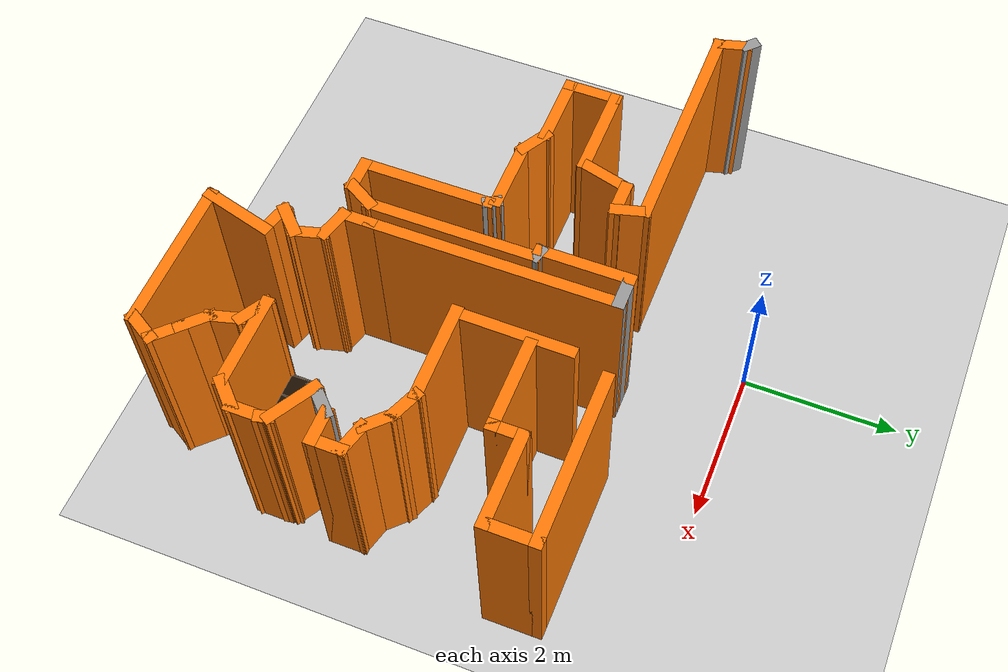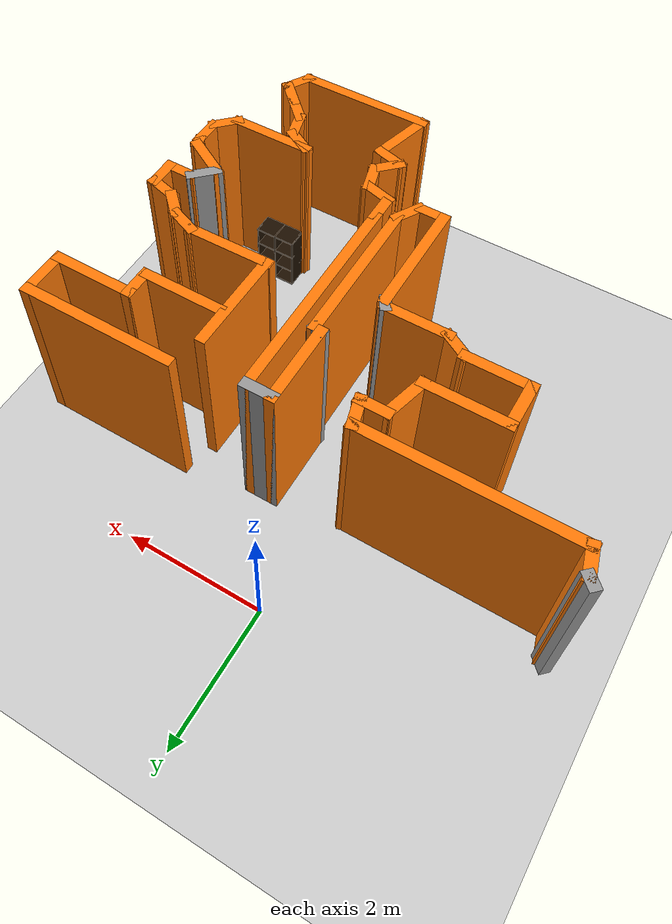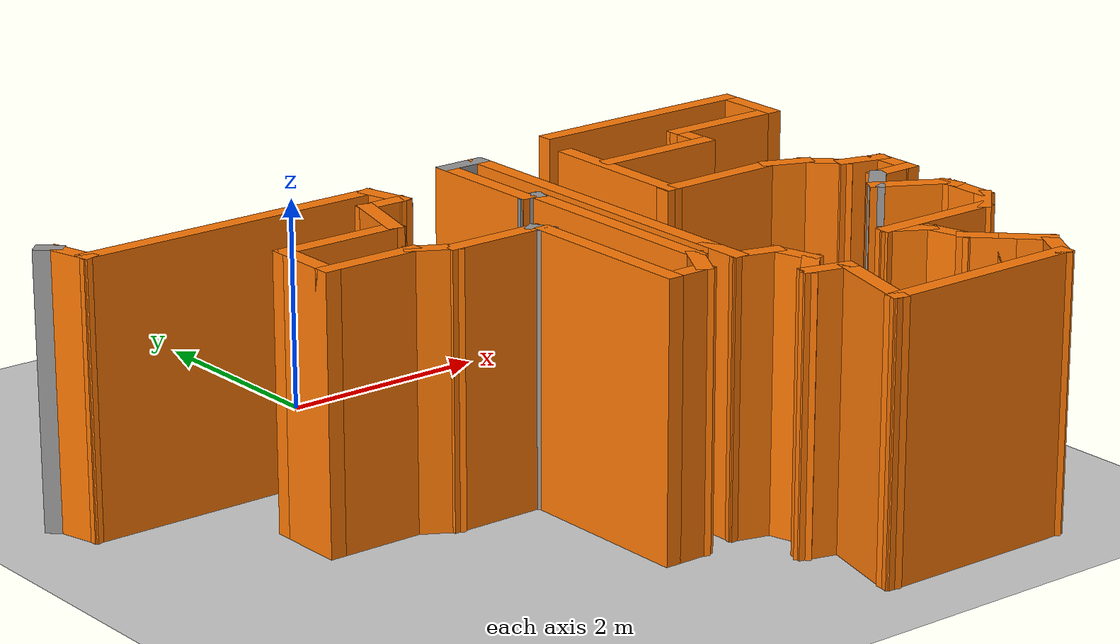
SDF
<sdf version="1.6">
 <world name="default">
  <model name="ground_plane">
   <static>1</static>
   <link name="link">
    <collision name="collision">
     <geometry><plane><normal>0 0 1</normal><size>100 100</size></plane></geometry>
     <surface>
      <contact><collide_bitmask>65535</collide_bitmask></contact>
      <friction><ode><mu>100</mu><mu2>50</mu2></ode></friction>
     </surface>
    </collision>
    <visual name="visual">
     <cast_shadows>0</cast_shadows>
     <geometry><plane><normal>0 0 1</normal><size>100 100</size></plane></geometry>
     <material>
      <script><uri>file://media/materials/scripts/gazebo.material</uri><name>Gazebo/Grey</name></script>
     </material>
    </visual>
   </link>
  </model>
  <model name="map_4">
   <pose>0.04124 -0.27835 0 0 -0 0</pose>
   <link name="Wall_100">
    <collision name="Wall_100_Collision">
     <geometry><box><size>0.5 0.15 2.5</size></box></geometry>
     <pose>0 0 1.25 0 -0 0</pose>
    </collision>
    <visual name="Wall_100_Visual">
     <pose>0 0 1.25 0 -0 0</pose>
     <geometry><box><size>0.5 0.15 2.5</size></box></geometry>
     <material>
      <script><uri>file://media/materials/scripts/gazebo.material</uri><name>Gazebo/Grey</name></script>
      <ambient>0.996078 0.47451 0.0196078 1</ambient>
     </material>
     <meta><layer>0</layer></meta>
    </visual>
    <pose>3.63966 -3.64447 0 0 -0 0</pose>
   </link>
   <link name="Wall_101">
    <collision name="Wall_101_Collision">
     <geometry><box><size>0.5 0.15 2.5</size></box></geometry>
     <pose>0 0 1.25 0 -0 0</pose>
    </collision>
    <visual name="Wall_101_Visual">
     <pose>0 0 1.25 0 -0 0</pose>
     <geometry><box><size>0.5 0.15 2.5</size></box></geometry>
     <material>
      <script><uri>file://media/materials/scripts/gazebo.material</uri><name>Gazebo/Grey</name></script>
      <ambient>0.996078 0.47451 0.0196078 1</ambient>
     </material>
     <meta><layer>0</layer></meta>
    </visual>
    <pose>3.81466 -3.46947 0 0 -0 1.5708</pose>
   </link>
   <link name="Wall_102">
    <collision name="Wall_102_Collision">
     <geometry><box><size>0.5 0.15 2.5</size></box></geometry>
     <pose>0 0 1.25 0 -0 0</pose>
    </collision>
    <visual name="Wall_102_Visual">
     <pose>0 0 1.25 0 -0 0</pose>
     <geometry><box><size>0.5 0.15 2.5</size></box></geometry>
     <material>
      <script><uri>file://media/materials/scripts/gazebo.material</uri><name>Gazebo/Grey</name></script>
      <ambient>0.996078 0.47451 0.0196078 1</ambient>
     </material>
     <meta><layer>0</layer></meta>
    </visual>
    <pose>3.64562 -3.24918 0 0 -0 2.87979</pose>
   </link>
   <link name="Wall_103">
    <collision name="Wall_103_Collision">
     <geometry><box><size>0.5 0.15 2.5</size></box></geometry>
     <pose>0 0 1.25 0 -0 0</pose>
    </collision>
    <visual name="Wall_103_Visual">
     <pose>0 0 1.25 0 -0 0</pose>
     <geometry><box><size>0.5 0.15 2.5</size></box></geometry>
     <material>
      <script><uri>file://media/materials/scripts/gazebo.material</uri><name>Gazebo/Grey</name></script>
      <ambient>0.996078 0.47451 0.0196078 1</ambient>
     </material>
     <meta><layer>0</layer></meta>
    </visual>
    <pose>3.35284 -3.08014 0 0 -0 2.35619</pose>
   </link>
   <link name="Wall_104">
    <collision name="Wall_104_Collision">
     <geometry><box><size>0.493604 0.15 2.5</size></box></geometry>
     <pose>0 0 1.25 0 -0 0</pose>
    </collision>
    <visual name="Wall_104_Visual">
     <pose>0 0 1.25 0 -0 0</pose>
     <geometry><box><size>0.493604 0.15 2.5</size></box></geometry>
     <material>
      <script><uri>file://media/materials/scripts/gazebo.material</uri><name>Gazebo/Grey</name></script>
      <ambient>0.996078 0.47451 0.0196078 1</ambient>
     </material>
     <meta><layer>0</layer></meta>
    </visual>
    <pose>3.06994 -2.89171 0 0 -0 2.75556</pose>
   </link>
   <link name="Wall_105">
    <collision name="Wall_105_Collision">
     <geometry><box><size>1.29573 0.15 2.5</size></box></geometry>
     <pose>0 0 1.25 0 -0 0</pose>
    </collision>
    <visual name="Wall_105_Visual">
     <pose>0 0 1.25 0 -0 0</pose>
     <geometry><box><size>1.29573 0.15 2.5</size></box></geometry>
     <material>
      <script><uri>file://media/materials/scripts/gazebo.material</uri><name>Gazebo/Grey</name></script>
      <ambient>0.996078 0.47451 0.0196078 1</ambient>
     </material>
     <meta><layer>0</layer></meta>
    </visual>
    <pose>2.32276 -2.83463 0 0 -0 -3.12832</pose>
   </link>
   <link name="Wall_106">
    <collision name="Wall_106_Collision">
     <geometry><box><size>1.54571 0.15 2.5</size></box></geometry>
     <pose>0 0 1.25 0 -0 0</pose>
    </collision>
    <visual name="Wall_106_Visual">
     <pose>0 0 1.25 0 -0 0</pose>
     <geometry><box><size>1.54571 0.15 2.5</size></box></geometry>
     <material>
      <script><uri>file://media/materials/scripts/gazebo.material</uri><name>Gazebo/Grey</name></script>
      <ambient>0.996078 0.47451 0.0196078 1</ambient>
     </material>
     <meta><layer>0</layer></meta>
    </visual>
    <pose>1.77276 -2.14442 0 0 -0 1.5599</pose>
   </link>
   <link name="Wall_108">
    <collision name="Wall_108_Collision">
     <geometry><box><size>1.25 0.15 2.5</size></box></geometry>
     <pose>0 0 1.25 0 -0 0</pose>
    </collision>
    <visual name="Wall_108_Visual">
     <pose>0 0 1.25 0 -0 0</pose>
     <geometry><box><size>1.25 0.15 2.5</size></box></geometry>
     <material>
      <script><uri>file://media/materials/scripts/gazebo.material</uri><name>Gazebo/Grey</name></script>
      <ambient>0.996078 0.47451 0.0196078 1</ambient>
     </material>
     <meta><layer>0</layer></meta>
    </visual>
    <pose>2.40475 -1.90642 0 0 -0 0</pose>
   </link>
   <link name="Wall_109">
    <collision name="Wall_109_Collision">
     <geometry><box><size>0.5 0.15 2.5</size></box></geometry>
     <pose>0 0 1.25 0 -0 0</pose>
    </collision>
    <visual name="Wall_109_Visual">
     <pose>0 0 1.25 0 -0 0</pose>
     <geometry><box><size>0.5 0.15 2.5</size></box></geometry>
     <material>
      <script><uri>file://media/materials/scripts/gazebo.material</uri><name>Gazebo/Grey</name></script>
      <ambient>0.996078 0.47451 0.0196078 1</ambient>
     </material>
     <meta><layer>0</layer></meta>
    </visual>
    <pose>2.95475 -1.73142 0 0 -0 1.5708</pose>
   </link>
   <link name="Wall_110">
    <collision name="Wall_110_Collision">
     <geometry><box><size>1.25 0.15 2.5</size></box></geometry>
     <pose>0 0 1.25 0 -0 0</pose>
    </collision>
    <visual name="Wall_110_Visual">
     <pose>0 0 1.25 0 -0 0</pose>
     <geometry><box><size>1.25 0.15 2.5</size></box></geometry>
     <material>
      <script><uri>file://media/materials/scripts/gazebo.material</uri><name>Gazebo/Grey</name></script>
      <ambient>0.996078 0.47451 0.0196078 1</ambient>
     </material>
     <meta><layer>0</layer></meta>
    </visual>
    <pose>3.50475 -1.55642 0 0 -0 0</pose>
   </link>
   <link name="Wall_111">
    <collision name="Wall_111_Collision">
     <geometry><box><size>0.75 0.15 2.5</size></box></geometry>
     <pose>0 0 1.25 0 -0 0</pose>
    </collision>
    <visual name="Wall_111_Visual">
     <pose>0 0 1.25 0 -0 0</pose>
     <geometry><box><size>0.75 0.15 2.5</size></box></geometry>
     <material>
      <script><uri>file://media/materials/scripts/gazebo.material</uri><name>Gazebo/Grey</name></script>
      <ambient>0.996078 0.47451 0.0196078 1</ambient>
     </material>
     <meta><layer>0</layer></meta>
    </visual>
    <pose>4.05475 -1.25642 0 0 -0 1.5708</pose>
   </link>
   <link name="Wall_112">
    <collision name="Wall_112_Collision">
     <geometry><box><size>2.25 0.15 2.5</size></box></geometry>
     <pose>0 0 1.25 0 -0 0</pose>
    </collision>
    <visual name="Wall_112_Visual">
     <pose>0 0 1.25 0 -0 0</pose>
     <geometry><box><size>2.25 0.15 2.5</size></box></geometry>
     <material>
      <script><uri>file://media/materials/scripts/gazebo.material</uri><name>Gazebo/Grey</name></script>
      <ambient>0.996078 0.47451 0.0196078 1</ambient>
     </material>
     <meta><layer>0</layer></meta>
    </visual>
    <pose>3.00475 -0.956422 0 0 -0 3.14159</pose>
   </link>
   <link name="Wall_49">
    <collision name="Wall_49_Collision">
     <geometry><box><size>0.25 0.15 2.5</size></box></geometry>
     <pose>0 0 1.25 0 -0 0</pose>
    </collision>
    <visual name="Wall_49_Visual">
     <pose>0 0 1.25 0 -0 0</pose>
     <geometry><box><size>0.25 0.15 2.5</size></box></geometry>
     <material>
      <script><uri>file://media/materials/scripts/gazebo.material</uri><name>Gazebo/Grey</name></script>
      <ambient>1 1 1 1</ambient>
     </material>
     <meta><layer>0</layer></meta>
    </visual>
    <pose>-3.31315 -0.935756 0 0 -0 -0.785398</pose>
   </link>
   <link name="Wall_50">
    <collision name="Wall_50_Collision">
     <geometry><box><size>0.5 0.15 2.5</size></box></geometry>
     <pose>0 0 1.25 0 -0 0</pose>
    </collision>
    <visual name="Wall_50_Visual">
     <pose>0 0 1.25 0 -0 0</pose>
     <geometry><box><size>0.5 0.15 2.5</size></box></geometry>
     <material>
      <script><uri>file://media/materials/scripts/gazebo.material</uri><name>Gazebo/Grey</name></script>
      <ambient>0.996078 0.47451 0.0196078 1</ambient>
     </material>
     <meta><layer>0</layer></meta>
    </visual>
    <pose>-3.2325 -1.14015 0 0 -0 -1.309</pose>
   </link>
   <link name="Wall_51">
    <collision name="Wall_51_Collision">
     <geometry><box><size>3 0.15 2.5</size></box></geometry>
     <pose>0 0 1.25 0 -0 0</pose>
    </collision>
    <visual name="Wall_51_Visual">
     <pose>0 0 1.25 0 -0 0</pose>
     <geometry><box><size>3 0.15 2.5</size></box></geometry>
     <material>
      <script><uri>file://media/materials/scripts/gazebo.material</uri><name>Gazebo/Grey</name></script>
      <ambient>0.996078 0.47451 0.0196078 1</ambient>
     </material>
     <meta><layer>0</layer></meta>
    </visual>
    <pose>-1.76221 -1.30919 0 0 -0 0</pose>
   </link>
   <link name="Wall_52">
    <collision name="Wall_52_Collision">
     <geometry><box><size>0.5 0.15 2.5</size></box></geometry>
     <pose>0 0 1.25 0 -0 0</pose>
    </collision>
    <visual name="Wall_52_Visual">
     <pose>0 0 1.25 0 -0 0</pose>
     <geometry><box><size>0.5 0.15 2.5</size></box></geometry>
     <material>
      <script><uri>file://media/materials/scripts/gazebo.material</uri><name>Gazebo/Grey</name></script>
      <ambient>0.996078 0.47451 0.0196078 1</ambient>
     </material>
     <meta><layer>0</layer></meta>
    </visual>
    <pose>-0.291915 -1.47822 0 0 -0 -1.309</pose>
   </link>
   <link name="Wall_53">
    <collision name="Wall_53_Collision">
     <geometry><box><size>0.5 0.15 2.5</size></box></geometry>
     <pose>0 0 1.25 0 -0 0</pose>
    </collision>
    <visual name="Wall_53_Visual">
     <pose>0 0 1.25 0 -0 0</pose>
     <geometry><box><size>0.5 0.15 2.5</size></box></geometry>
     <material>
      <script><uri>file://media/materials/scripts/gazebo.material</uri><name>Gazebo/Grey</name></script>
      <ambient>0.996078 0.47451 0.0196078 1</ambient>
     </material>
     <meta><layer>0</layer></meta>
    </visual>
    <pose>-0.421622 -1.64726 0 0 -0 3.14159</pose>
   </link>
   <link name="Wall_54">
    <collision name="Wall_54_Collision">
     <geometry><box><size>0.75 0.15 2.5</size></box></geometry>
     <pose>0 0 1.25 0 -0 0</pose>
    </collision>
    <visual name="Wall_54_Visual">
     <pose>0 0 1.25 0 -0 0</pose>
     <geometry><box><size>0.75 0.15 2.5</size></box></geometry>
     <material>
      <script><uri>file://media/materials/scripts/gazebo.material</uri><name>Gazebo/Grey</name></script>
      <ambient>0.996078 0.47451 0.0196078 1</ambient>
     </material>
     <meta><layer>0</layer></meta>
    </visual>
    <pose>-0.674268 -1.93704 0 0 -0 -1.8326</pose>
   </link>
   <link name="Wall_55">
    <collision name="Wall_55_Collision">
     <geometry><box><size>1.25 0.15 2.5</size></box></geometry>
     <pose>0 0 1.25 0 -0 0</pose>
    </collision>
    <visual name="Wall_55_Visual">
     <pose>0 0 1.25 0 -0 0</pose>
     <geometry><box><size>1.25 0.15 2.5</size></box></geometry>
     <material>
      <script><uri>file://media/materials/scripts/gazebo.material</uri><name>Gazebo/Grey</name></script>
      <ambient>0.996078 0.47451 0.0196078 1</ambient>
     </material>
     <meta><layer>0</layer></meta>
    </visual>
    <pose>-1.30191 -2.22681 0 0 -0 3.14159</pose>
   </link>
   <link name="Wall_60">
    <collision name="Wall_60_Collision">
     <geometry><box><size>0.75 0.15 2.5</size></box></geometry>
     <pose>0 0 1.25 0 -0 0</pose>
    </collision>
    <visual name="Wall_60_Visual">
     <pose>0 0 1.25 0 -0 0</pose>
     <geometry><box><size>0.75 0.15 2.5</size></box></geometry>
     <material>
      <script><uri>file://media/materials/scripts/gazebo.material</uri><name>Gazebo/Grey</name></script>
      <ambient>0.996078 0.47451 0.0196078 1</ambient>
     </material>
     <meta><layer>0</layer></meta>
    </visual>
    <pose>-1.85191 -2.52682 0 0 -0 -1.5708</pose>
   </link>
   <link name="Wall_61">
    <collision name="Wall_61_Collision">
     <geometry><box><size>1 0.15 2.5</size></box></geometry>
     <pose>0 0 1.25 0 -0 0</pose>
    </collision>
    <visual name="Wall_61_Visual">
     <pose>0 0 1.25 0 -0 0</pose>
     <geometry><box><size>1 0.15 2.5</size></box></geometry>
     <material>
      <script><uri>file://media/materials/scripts/gazebo.material</uri><name>Gazebo/Grey</name></script>
      <ambient>0.996078 0.47451 0.0196078 1</ambient>
     </material>
     <meta><layer>0</layer></meta>
    </visual>
    <pose>-1.42691 -2.82681 0 0 -0 0</pose>
   </link>
   <link name="Wall_62">
    <collision name="Wall_62_Collision">
     <geometry><box><size>0.5 0.15 2.5</size></box></geometry>
     <pose>0 0 1.25 0 -0 0</pose>
    </collision>
    <visual name="Wall_62_Visual">
     <pose>0 0 1.25 0 -0 0</pose>
     <geometry><box><size>0.5 0.15 2.5</size></box></geometry>
     <material>
      <script><uri>file://media/materials/scripts/gazebo.material</uri><name>Gazebo/Grey</name></script>
      <ambient>0.996078 0.47451 0.0196078 1</ambient>
     </material>
     <meta><layer>0</layer></meta>
    </visual>
    <pose>-0.850359 -2.91431 0 0 -0 -0.523599</pose>
   </link>
   <link name="Wall_68">
    <collision name="Wall_68_Collision">
     <geometry><box><size>1 0.15 2.5</size></box></geometry>
     <pose>0 0 1.25 0 -0 0</pose>
    </collision>
    <visual name="Wall_68_Visual">
     <pose>0 0 1.25 0 -0 0</pose>
     <geometry><box><size>1 0.15 2.5</size></box></geometry>
     <material>
      <script><uri>file://media/materials/scripts/gazebo.material</uri><name>Gazebo/Grey</name></script>
      <ambient>0.996078 0.47451 0.0196078 1</ambient>
     </material>
     <meta><layer>0</layer></meta>
    </visual>
    <pose>-0.273804 -3.00182 0 0 -0 0</pose>
   </link>
   <link name="Wall_69">
    <collision name="Wall_69_Collision">
     <geometry><box><size>0.25 0.15 2.5</size></box></geometry>
     <pose>0 0 1.25 0 -0 0</pose>
    </collision>
    <visual name="Wall_69_Visual">
     <pose>0 0 1.25 0 -0 0</pose>
     <geometry><box><size>0.25 0.15 2.5</size></box></geometry>
     <material>
      <script><uri>file://media/materials/scripts/gazebo.material</uri><name>Gazebo/Grey</name></script>
      <ambient>1 1 1 1</ambient>
     </material>
     <meta><layer>0</layer></meta>
    </visual>
    <pose>0.176196 -3.04512 0 0 -0 -1.0472</pose>
   </link>
   <link name="Wall_70">
    <collision name="Wall_70_Collision">
     <geometry><box><size>1.75 0.15 2.5</size></box></geometry>
     <pose>0 0 1.25 0 -0 0</pose>
    </collision>
    <visual name="Wall_70_Visual">
     <pose>0 0 1.25 0 -0 0</pose>
     <geometry><box><size>1.75 0.15 2.5</size></box></geometry>
     <material>
      <script><uri>file://media/materials/scripts/gazebo.material</uri><name>Gazebo/Grey</name></script>
      <ambient>0.996078 0.47451 0.0196078 1</ambient>
     </material>
     <meta><layer>0</layer></meta>
    </visual>
    <pose>0.201195 -3.88842 0 0 -0 -1.5708</pose>
   </link>
   <link name="Wall_73">
    <collision name="Wall_73_Collision">
     <geometry><box><size>0.5 0.15 2.5</size></box></geometry>
     <pose>0 0 1.25 0 -0 0</pose>
    </collision>
    <visual name="Wall_73_Visual">
     <pose>0 0 1.25 0 -0 0</pose>
     <geometry><box><size>0.5 0.15 2.5</size></box></geometry>
     <material>
      <script><uri>file://media/materials/scripts/gazebo.material</uri><name>Gazebo/Grey</name></script>
      <ambient>0.996078 0.47451 0.0196078 1</ambient>
     </material>
     <meta><layer>0</layer></meta>
    </visual>
    <pose>0.376195 -4.68842 0 0 -0 0</pose>
   </link>
   <link name="Wall_74">
    <collision name="Wall_74_Collision">
     <geometry><box><size>0.5 0.15 2.5</size></box></geometry>
     <pose>0 0 1.25 0 -0 0</pose>
    </collision>
    <visual name="Wall_74_Visual">
     <pose>0 0 1.25 0 -0 0</pose>
     <geometry><box><size>0.5 0.15 2.5</size></box></geometry>
     <material>
      <script><uri>file://media/materials/scripts/gazebo.material</uri><name>Gazebo/Grey</name></script>
      <ambient>0.996078 0.47451 0.0196078 1</ambient>
     </material>
     <meta><layer>0</layer></meta>
    </visual>
    <pose>0.638695 -4.53686 0 0 -0 1.0472</pose>
   </link>
   <link name="Wall_75">
    <collision name="Wall_75_Collision">
     <geometry><box><size>2.25 0.15 2.5</size></box></geometry>
     <pose>0 0 1.25 0 -0 0</pose>
    </collision>
    <visual name="Wall_75_Visual">
     <pose>0 0 1.25 0 -0 0</pose>
     <geometry><box><size>2.25 0.15 2.5</size></box></geometry>
     <material>
      <script><uri>file://media/materials/scripts/gazebo.material</uri><name>Gazebo/Grey</name></script>
      <ambient>0.996078 0.47451 0.0196078 1</ambient>
     </material>
     <meta><layer>0</layer></meta>
    </visual>
    <pose>0.726195 -3.33531 0 0 -0 1.5708</pose>
   </link>
   <link name="Wall_76">
    <collision name="Wall_76_Collision">
     <geometry><box><size>0.25 0.15 2.5</size></box></geometry>
     <pose>0 0 1.25 0 -0 0</pose>
    </collision>
    <visual name="Wall_76_Visual">
     <pose>0 0 1.25 0 -0 0</pose>
     <geometry><box><size>0.25 0.15 2.5</size></box></geometry>
     <material>
      <script><uri>file://media/materials/scripts/gazebo.material</uri><name>Gazebo/Grey</name></script>
      <ambient>1 1 1 1</ambient>
     </material>
     <meta><layer>0</layer></meta>
    </visual>
    <pose>0.677899 -2.27237 0 0 -0 2.87979</pose>
   </link>
   <link name="Wall_77">
    <collision name="Wall_77_Collision">
     <geometry><box><size>1.25 0.15 2.5</size></box></geometry>
     <pose>0 0 1.25 0 -0 0</pose>
    </collision>
    <visual name="Wall_77_Visual">
     <pose>0 0 1.25 0 -0 0</pose>
     <geometry><box><size>1.25 0.15 2.5</size></box></geometry>
     <material>
      <script><uri>file://media/materials/scripts/gazebo.material</uri><name>Gazebo/Grey</name></script>
      <ambient>0.996078 0.47451 0.0196078 1</ambient>
     </material>
     <meta><layer>0</layer></meta>
    </visual>
    <pose>0.629603 -1.70943 0 0 -0 1.5708</pose>
   </link>
   <link name="Wall_78">
    <collision name="Wall_78_Collision">
     <geometry><box><size>0.5 0.15 2.5</size></box></geometry>
     <pose>0 0 1.25 0 -0 0</pose>
    </collision>
    <visual name="Wall_78_Visual">
     <pose>0 0 1.25 0 -0 0</pose>
     <geometry><box><size>0.5 0.15 2.5</size></box></geometry>
     <material>
      <script><uri>file://media/materials/scripts/gazebo.material</uri><name>Gazebo/Grey</name></script>
      <ambient>1 1 1 1</ambient>
     </material>
     <meta><layer>0</layer></meta>
    </visual>
    <pose>0.804603 -1.15943 0 0 -0 0</pose>
   </link>
   <link name="Wall_79">
    <collision name="Wall_79_Collision">
     <geometry><box><size>3.25 0.15 2.5</size></box></geometry>
     <pose>0 0 1.25 0 -0 0</pose>
    </collision>
    <visual name="Wall_79_Visual">
     <pose>0 0 1.25 0 -0 0</pose>
     <geometry><box><size>3.25 0.15 2.5</size></box></geometry>
     <material>
      <script><uri>file://media/materials/scripts/gazebo.material</uri><name>Gazebo/Grey</name></script>
      <ambient>0.996078 0.47451 0.0196078 1</ambient>
     </material>
     <meta><layer>0</layer></meta>
    </visual>
    <pose>0.979603 -2.70943 0 0 -0 -1.5708</pose>
   </link>
   <link name="Wall_80">
    <collision name="Wall_80_Collision">
     <geometry><box><size>0.5 0.15 2.5</size></box></geometry>
     <pose>0 0 1.25 0 -0 0</pose>
    </collision>
    <visual name="Wall_80_Visual">
     <pose>0 0 1.25 0 -0 0</pose>
     <geometry><box><size>0.5 0.15 2.5</size></box></geometry>
     <material>
      <script><uri>file://media/materials/scripts/gazebo.material</uri><name>Gazebo/Grey</name></script>
      <ambient>0.996078 0.47451 0.0196078 1</ambient>
     </material>
     <meta><layer>0</layer></meta>
    </visual>
    <pose>0.979603 -4.43443 0 0 -0 -1.5708</pose>
   </link>
   <link name="Wall_81">
    <collision name="Wall_81_Collision">
     <geometry><box><size>0.5 0.15 2.5</size></box></geometry>
     <pose>0 0 1.25 0 -0 0</pose>
    </collision>
    <visual name="Wall_81_Visual">
     <pose>0 0 1.25 0 -0 0</pose>
     <geometry><box><size>0.5 0.15 2.5</size></box></geometry>
     <material>
      <script><uri>file://media/materials/scripts/gazebo.material</uri><name>Gazebo/Grey</name></script>
      <ambient>0.996078 0.47451 0.0196078 1</ambient>
     </material>
     <meta><layer>0</layer></meta>
    </visual>
    <pose>1.14864 -4.65472 0 0 -0 -0.261799</pose>
   </link>
   <link name="Wall_82">
    <collision name="Wall_82_Collision">
     <geometry><box><size>0.5 0.15 2.5</size></box></geometry>
     <pose>0 0 1.25 0 -0 0</pose>
    </collision>
    <visual name="Wall_82_Visual">
     <pose>0 0 1.25 0 -0 0</pose>
     <geometry><box><size>0.5 0.15 2.5</size></box></geometry>
     <material>
      <script><uri>file://media/materials/scripts/gazebo.material</uri><name>Gazebo/Grey</name></script>
      <ambient>0.996078 0.47451 0.0196078 1</ambient>
     </material>
     <meta><layer>0</layer></meta>
    </visual>
    <pose>1.36297 -4.86905 0 0 -0 -1.309</pose>
   </link>
   <link name="Wall_83">
    <collision name="Wall_83_Collision">
     <geometry><box><size>0.5 0.15 2.5</size></box></geometry>
     <pose>0 0 1.25 0 -0 0</pose>
    </collision>
    <visual name="Wall_83_Visual">
     <pose>0 0 1.25 0 -0 0</pose>
     <geometry><box><size>0.5 0.15 2.5</size></box></geometry>
     <material>
      <script><uri>file://media/materials/scripts/gazebo.material</uri><name>Gazebo/Grey</name></script>
      <ambient>0.996078 0.47451 0.0196078 1</ambient>
     </material>
     <meta><layer>0</layer></meta>
    </visual>
    <pose>1.28452 -5.16183 0 0 -0 -2.35619</pose>
   </link>
   <link name="Wall_84">
    <collision name="Wall_84_Collision">
     <geometry><box><size>0.5 0.15 2.5</size></box></geometry>
     <pose>0 0 1.25 0 -0 0</pose>
    </collision>
    <visual name="Wall_84_Visual">
     <pose>0 0 1.25 0 -0 0</pose>
     <geometry><box><size>0.5 0.15 2.5</size></box></geometry>
     <material>
      <script><uri>file://media/materials/scripts/gazebo.material</uri><name>Gazebo/Grey</name></script>
      <ambient>0.996078 0.47451 0.0196078 1</ambient>
     </material>
     <meta><layer>0</layer></meta>
    </visual>
    <pose>1.32981 -5.33087 0 0 -0 -0.261799</pose>
   </link>
   <link name="Wall_85">
    <collision name="Wall_85_Collision">
     <geometry><box><size>1 0.15 2.5</size></box></geometry>
     <pose>0 0 1.25 0 -0 0</pose>
    </collision>
    <visual name="Wall_85_Visual">
     <pose>0 0 1.25 0 -0 0</pose>
     <geometry><box><size>1 0.15 2.5</size></box></geometry>
     <material>
      <script><uri>file://media/materials/scripts/gazebo.material</uri><name>Gazebo/Grey</name></script>
      <ambient>0.996078 0.47451 0.0196078 1</ambient>
     </material>
     <meta><layer>0</layer></meta>
    </visual>
    <pose>1.38885 -5.78668 0 0 -0 -1.8326</pose>
   </link>
   <link name="Wall_86">
    <collision name="Wall_86_Collision">
     <geometry><box><size>2 0.15 2.5</size></box></geometry>
     <pose>0 0 1.25 0 -0 0</pose>
    </collision>
    <visual name="Wall_86_Visual">
     <pose>0 0 1.25 0 -0 0</pose>
     <geometry><box><size>2 0.15 2.5</size></box></geometry>
     <material>
      <script><uri>file://media/materials/scripts/gazebo.material</uri><name>Gazebo/Grey</name></script>
      <ambient>0.996078 0.47451 0.0196078 1</ambient>
     </material>
     <meta><layer>0</layer></meta>
    </visual>
    <pose>2.20385 -6.1972 0 0 -0 0</pose>
   </link>
   <link name="Wall_87">
    <collision name="Wall_87_Collision">
     <geometry><box><size>0.5 0.15 2.5</size></box></geometry>
     <pose>0 0 1.25 0 -0 0</pose>
    </collision>
    <visual name="Wall_87_Visual">
     <pose>0 0 1.25 0 -0 0</pose>
     <geometry><box><size>0.5 0.15 2.5</size></box></geometry>
     <material>
      <script><uri>file://media/materials/scripts/gazebo.material</uri><name>Gazebo/Grey</name></script>
      <ambient>0.996078 0.47451 0.0196078 1</ambient>
     </material>
     <meta><layer>0</layer></meta>
    </visual>
    <pose>3.21635 -6.04564 0 0 -0 1.0472</pose>
   </link>
   <link name="Wall_88">
    <collision name="Wall_88_Collision">
     <geometry><box><size>0.5 0.15 2.5</size></box></geometry>
     <pose>0 0 1.25 0 -0 0</pose>
    </collision>
    <visual name="Wall_88_Visual">
     <pose>0 0 1.25 0 -0 0</pose>
     <geometry><box><size>0.5 0.15 2.5</size></box></geometry>
     <material>
      <script><uri>file://media/materials/scripts/gazebo.material</uri><name>Gazebo/Grey</name></script>
      <ambient>0.996078 0.47451 0.0196078 1</ambient>
     </material>
     <meta><layer>0</layer></meta>
    </visual>
    <pose>3.18011 -5.77035 0 0 -0 2.35619</pose>
   </link>
   <link name="Wall_89">
    <collision name="Wall_89_Collision">
     <geometry><box><size>0.5 0.15 2.5</size></box></geometry>
     <pose>0 0 1.25 0 -0 0</pose>
    </collision>
    <visual name="Wall_89_Visual">
     <pose>0 0 1.25 0 -0 0</pose>
     <geometry><box><size>0.5 0.15 2.5</size></box></geometry>
     <material>
      <script><uri>file://media/materials/scripts/gazebo.material</uri><name>Gazebo/Grey</name></script>
      <ambient>0.996078 0.47451 0.0196078 1</ambient>
     </material>
     <meta><layer>0</layer></meta>
    </visual>
    <pose>2.93262 -5.52286 0 0 -0 2.35619</pose>
   </link>
   <link name="Wall_92">
    <collision name="Wall_92_Collision">
     <geometry><box><size>0.5 0.15 2.5</size></box></geometry>
     <pose>0 0 1.25 0 -0 0</pose>
    </collision>
    <visual name="Wall_92_Visual">
     <pose>0 0 1.25 0 -0 0</pose>
     <geometry><box><size>0.5 0.15 2.5</size></box></geometry>
     <material>
      <script><uri>file://media/materials/scripts/gazebo.material</uri><name>Gazebo/Grey</name></script>
      <ambient>0.996078 0.47451 0.0196078 1</ambient>
     </material>
     <meta><layer>0</layer></meta>
    </visual>
    <pose>2.76359 -5.23008 0 0 -0 1.8326</pose>
   </link>
   <link name="Wall_93">
    <collision name="Wall_93_Collision">
     <geometry><box><size>0.5 0.15 2.5</size></box></geometry>
     <pose>0 0 1.25 0 -0 0</pose>
    </collision>
    <visual name="Wall_93_Visual">
     <pose>0 0 1.25 0 -0 0</pose>
     <geometry><box><size>0.5 0.15 2.5</size></box></geometry>
     <material>
      <script><uri>file://media/materials/scripts/gazebo.material</uri><name>Gazebo/Grey</name></script>
      <ambient>0.996078 0.47451 0.0196078 1</ambient>
     </material>
     <meta><layer>0</layer></meta>
    </visual>
    <pose>2.56674 -4.97354 0 0 -0 2.61799</pose>
   </link>
   <link name="Wall_94">
    <collision name="Wall_94_Collision">
     <geometry><box><size>1.25 0.15 2.5</size></box></geometry>
     <pose>0 0 1.25 0 -0 0</pose>
    </collision>
    <visual name="Wall_94_Visual">
     <pose>0 0 1.25 0 -0 0</pose>
     <geometry><box><size>1.25 0.15 2.5</size></box></geometry>
     <material>
      <script><uri>file://media/materials/scripts/gazebo.material</uri><name>Gazebo/Grey</name></script>
      <ambient>0.996078 0.47451 0.0196078 1</ambient>
     </material>
     <meta><layer>0</layer></meta>
    </visual>
    <pose>2.96518 -4.88604 0 0 -0 0</pose>
   </link>
   <link name="Wall_95">
    <collision name="Wall_95_Collision">
     <geometry><box><size>0.5 0.15 2.5</size></box></geometry>
     <pose>0 0 1.25 0 -0 0</pose>
    </collision>
    <visual name="Wall_95_Visual">
     <pose>0 0 1.25 0 -0 0</pose>
     <geometry><box><size>0.5 0.15 2.5</size></box></geometry>
     <material>
      <script><uri>file://media/materials/scripts/gazebo.material</uri><name>Gazebo/Grey</name></script>
      <ambient>0.996078 0.47451 0.0196078 1</ambient>
     </material>
     <meta><layer>0</layer></meta>
    </visual>
    <pose>3.63893 -4.7623 0 0 -0 0.785398</pose>
   </link>
   <link name="Wall_96">
    <collision name="Wall_96_Collision">
     <geometry><box><size>0.5 0.15 2.5</size></box></geometry>
     <pose>0 0 1.25 0 -0 0</pose>
    </collision>
    <visual name="Wall_96_Visual">
     <pose>0 0 1.25 0 -0 0</pose>
     <geometry><box><size>0.5 0.15 2.5</size></box></geometry>
     <material>
      <script><uri>file://media/materials/scripts/gazebo.material</uri><name>Gazebo/Grey</name></script>
      <ambient>0.996078 0.47451 0.0196078 1</ambient>
     </material>
     <meta><layer>0</layer></meta>
    </visual>
    <pose>3.76267 -4.46355 0 0 -0 1.5708</pose>
   </link>
   <link name="Wall_97">
    <collision name="Wall_97_Collision">
     <geometry><box><size>0.25 0.15 2.5</size></box></geometry>
     <pose>0 0 1.25 0 -0 0</pose>
    </collision>
    <visual name="Wall_97_Visual">
     <pose>0 0 1.25 0 -0 0</pose>
     <geometry><box><size>0.25 0.15 2.5</size></box></geometry>
     <material>
      <script><uri>file://media/materials/scripts/gazebo.material</uri><name>Gazebo/Grey</name></script>
      <ambient>0.996078 0.47451 0.0196078 1</ambient>
     </material>
     <meta><layer>0</layer></meta>
    </visual>
    <pose>3.74973 -4.24026 0 0 -0 1.8326</pose>
   </link>
   <link name="Wall_98">
    <collision name="Wall_98_Collision">
     <geometry><box><size>0.75 0.15 2.5</size></box></geometry>
     <pose>0 0 1.25 0 -0 0</pose>
    </collision>
    <visual name="Wall_98_Visual">
     <pose>0 0 1.25 0 -0 0</pose>
     <geometry><box><size>0.75 0.15 2.5</size></box></geometry>
     <material>
      <script><uri>file://media/materials/scripts/gazebo.material</uri><name>Gazebo/Grey</name></script>
      <ambient>0.996078 0.47451 0.0196078 1</ambient>
     </material>
     <meta><layer>0</layer></meta>
    </visual>
    <pose>3.47698 -4.04196 0 0 -0 2.61799</pose>
   </link>
   <link name="Wall_99">
    <collision name="Wall_99_Collision">
     <geometry><box><size>0.5 0.15 2.5</size></box></geometry>
     <pose>0 0 1.25 0 -0 0</pose>
    </collision>
    <visual name="Wall_99_Visual">
     <pose>0 0 1.25 0 -0 0</pose>
     <geometry><box><size>0.5 0.15 2.5</size></box></geometry>
     <material>
      <script><uri>file://media/materials/scripts/gazebo.material</uri><name>Gazebo/Grey</name></script>
      <ambient>1 1 1 1</ambient>
     </material>
     <meta><layer>0</layer></meta>
    </visual>
    <pose>3.34092 -3.76822 0 0 -0 0.785398</pose>
   </link>
   <static>1</static>
  </model>
  <model name="6方格书柜_1">
   <link name="Wall_0">
    <pose>0 0 0.01 0 -0 0</pose>
    <inertial>
     <mass>1.6201</mass>
     <inertia><ixx>0.0119</ixx><iyy>0.0631</iyy><izz>0.0513</izz><ixy>0</ixy><ixz>0</ixz><iyz>0</iyz></inertia>
    </inertial>
    <collision name="Wall_0_Collision"><geometry><box><size>0.616 0.296 0.02</size></box></geometry></collision>
    <visual name="Wall_0_Visual">
     <geometry><box><size>0.616 0.296 0.02</size></box></geometry>
     <material>
      <script><uri>file://media/materials/scripts/gazebo.material</uri><name>Gazebo/Grey</name></script>
      <ambient>0.105882 0.0509804 0 1</ambient>
     </material>
    </visual>
   </link>
   <joint name="0_2" type="fixed">
    <pose>-0.308 0 0 0 -0 0</pose>
    <parent>Wall_2</parent>
    <child>Wall_0</child>
    <axis>
     <xyz>1 0 0</xyz>
     <use_parent_model_frame>0</use_parent_model_frame>
     <limit><lower>-1e+16</lower><upper>1e+16</upper></limit>
    </axis>
   </joint>
   <joint name="0_12" type="fixed">
    <parent>Wall_12</parent>
    <child>Wall_0</child>
    <axis>
     <xyz>0 0 1</xyz>
     <use_parent_model_frame>0</use_parent_model_frame>
     <limit><lower>-1e+16</lower><upper>1e+16</upper></limit>
    </axis>
   </joint>
   <joint name="0_4" type="fixed">
    <pose>0.308 0 0 0 -0 0</pose>
    <parent>Wall_4</parent>
    <child>Wall_0</child>
    <axis>
     <xyz>1 0 0</xyz>
     <use_parent_model_frame>0</use_parent_model_frame>
     <limit><lower>-1e+16</lower><upper>1e+16</upper></limit>
    </axis>
   </joint>
   <link name="Wall_10">
    <pose>0 0 0.61 0 -0 0</pose>
    <inertial>
     <mass>1.6201</mass>
     <inertia><ixx>0.0119</ixx><iyy>0.0631</iyy><izz>0.0513</izz><ixy>0</ixy><ixz>0</ixz><iyz>0</iyz></inertia>
    </inertial>
    <collision name="Wall_10_Collision"><geometry><box><size>0.616 0.296 0.02</size></box></geometry></collision>
    <visual name="Wall_10_Visual">
     <geometry><box><size>0.616 0.296 0.02</size></box></geometry>
     <material>
      <script><uri>file://media/materials/scripts/gazebo.material</uri><name>Gazebo/Grey</name></script>
      <ambient>0.105882 0.0509804 0 1</ambient>
     </material>
    </visual>
   </link>
   <joint name="10_2" type="fixed">
    <pose>-0.308 0 0 0 -0 0</pose>
    <parent>Wall_2</parent>
    <child>Wall_10</child>
    <axis>
     <xyz>1 0 0</xyz>
     <use_parent_model_frame>0</use_parent_model_frame>
     <limit><lower>-1e+16</lower><upper>1e+16</upper></limit>
    </axis>
   </joint>
   <joint name="10_12" type="fixed">
    <parent>Wall_12</parent>
    <child>Wall_10</child>
    <axis>
     <xyz>0 0 1</xyz>
     <use_parent_model_frame>0</use_parent_model_frame>
     <limit><lower>-1e+16</lower><upper>1e+16</upper></limit>
    </axis>
   </joint>
   <joint name="10_4" type="fixed">
    <pose>0.308 0 0 0 -0 0</pose>
    <parent>Wall_4</parent>
    <child>Wall_10</child>
    <axis>
     <xyz>1 0 0</xyz>
     <use_parent_model_frame>0</use_parent_model_frame>
     <limit><lower>-1e+16</lower><upper>1e+16</upper></limit>
    </axis>
   </joint>
   <link name="Wall_12">
    <pose>0 0 0.4575 0 -0 0</pose>
    <inertial>
     <mass>2.4065</mass>
     <inertia><ixx>0.0177</ixx><iyy>0.1855</iyy><izz>0.168</izz><ixy>0</ixy><ixz>0</ixz><iyz>0</iyz></inertia>
    </inertial>
    <collision name="Wall_12_Collision"><geometry><box><size>0.02 0.296 0.915</size></box></geometry></collision>
    <visual name="Wall_12_Visual">
     <geometry><box><size>0.02 0.296 0.915</size></box></geometry>
     <material>
      <script><uri>file://media/materials/scripts/gazebo.material</uri><name>Gazebo/Grey</name></script>
      <ambient>0.105882 0.0509804 0 1</ambient>
     </material>
    </visual>
   </link>
   <link name="Wall_2">
    <pose>-0.298 0 0.4575 0 -0 0</pose>
    <inertial>
     <mass>2.4065</mass>
     <inertia><ixx>0.0177</ixx><iyy>0.1855</iyy><izz>0.168</izz><ixy>0</ixy><ixz>0</ixz><iyz>0</iyz></inertia>
    </inertial>
    <collision name="Wall_2_Collision"><geometry><box><size>0.02 0.296 0.915</size></box></geometry></collision>
    <visual name="Wall_2_Visual">
     <geometry><box><size>0.02 0.296 0.915</size></box></geometry>
     <material>
      <script><uri>file://media/materials/scripts/gazebo.material</uri><name>Gazebo/Grey</name></script>
      <ambient>0.105882 0.0509804 0 1</ambient>
     </material>
    </visual>
   </link>
   <link name="Wall_4">
    <pose>0.298 0 0.4575 0 -0 0</pose>
    <inertial>
     <mass>2.4065</mass>
     <inertia><ixx>0.0177</ixx><iyy>0.1855</iyy><izz>0.168</izz><ixy>0</ixy><ixz>0</ixz><iyz>0</iyz></inertia>
    </inertial>
    <collision name="Wall_4_Collision"><geometry><box><size>0.02 0.296 0.915</size></box></geometry></collision>
    <visual name="Wall_4_Visual">
     <geometry><box><size>0.02 0.296 0.915</size></box></geometry>
     <material>
      <script><uri>file://media/materials/scripts/gazebo.material</uri><name>Gazebo/Grey</name></script>
      <ambient>0.105882 0.0509804 0 1</ambient>
     </material>
    </visual>
   </link>
   <link name="Wall_6">
    <pose>0 0 0.905 0 -0 0</pose>
    <inertial>
     <mass>1.6201</mass>
     <inertia><ixx>0.0119</ixx><iyy>0.0631</iyy><izz>0.0513</izz><ixy>0</ixy><ixz>0</ixz><iyz>0</iyz></inertia>
    </inertial>
    <collision name="Wall_6_Collision"><geometry><box><size>0.616 0.296 0.02</size></box></geometry></collision>
    <visual name="Wall_6_Visual">
     <geometry><box><size>0.616 0.296 0.02</size></box></geometry>
     <material>
      <script><uri>file://media/materials/scripts/gazebo.material</uri><name>Gazebo/Grey</name></script>
      <ambient>0.105882 0.0509804 0 1</ambient>
     </material>
    </visual>
   </link>
   <joint name="6_2" type="fixed">
    <pose>-0.308 0 0 0 -0 0</pose>
    <parent>Wall_2</parent>
    <child>Wall_6</child>
    <axis>
     <xyz>2 0 0</xyz>
     <use_parent_model_frame>0</use_parent_model_frame>
     <limit><lower>-1e+16</lower><upper>1e+16</upper></limit>
    </axis>
   </joint>
   <joint name="6_12" type="fixed">
    <parent>Wall_12</parent>
    <child>Wall_6</child>
    <axis>
     <xyz>0 0 1</xyz>
     <use_parent_model_frame>0</use_parent_model_frame>
     <limit><lower>-1e+16</lower><upper>1e+16</upper></limit>
    </axis>
   </joint>
   <joint name="6_4" type="fixed">
    <pose>0.308 0 0 0 -0 0</pose>
    <parent>Wall_4</parent>
    <child>Wall_6</child>
    <axis>
     <xyz>1 0 0</xyz>
     <use_parent_model_frame>0</use_parent_model_frame>
     <limit><lower>-1e+16</lower><upper>1e+16</upper></limit>
    </axis>
   </joint>
   <link name="Wall_8">
    <pose>0 0 0.305 0 -0 0</pose>
    <inertial>
     <mass>1.6201</mass>
     <inertia><ixx>0.0119</ixx><iyy>0.0631</iyy><izz>0.0513</izz><ixy>0</ixy><ixz>0</ixz><iyz>0</iyz></inertia>
    </inertial>
    <collision name="Wall_8_Collision"><geometry><box><size>0.616 0.296 0.02</size></box></geometry></collision>
    <visual name="Wall_8_Visual">
     <geometry><box><size>0.616 0.296 0.02</size></box></geometry>
     <material>
      <script><uri>file://media/materials/scripts/gazebo.material</uri><name>Gazebo/Grey</name></script>
      <ambient>0.105882 0.0509804 0 1</ambient>
     </material>
    </visual>
   </link>
   <joint name="8_2" type="fixed">
    <pose>-0.308 0 0 0 -0 0</pose>
    <parent>Wall_2</parent>
    <child>Wall_8</child>
    <axis>
     <xyz>1 0 0</xyz>
     <use_parent_model_frame>0</use_parent_model_frame>
     <limit><lower>-1e+16</lower><upper>1e+16</upper></limit>
    </axis>
   </joint>
   <joint name="8_12" type="fixed">
    <parent>Wall_12</parent>
    <child>Wall_8</child>
    <axis>
     <xyz>0 0 1</xyz>
     <use_parent_model_frame>0</use_parent_model_frame>
     <limit><lower>-1e+16</lower><upper>1e+16</upper></limit>
    </axis>
   </joint>
   <joint name="8_4" type="fixed">
    <pose>0.308 0 0 0 -0 0</pose>
    <parent>Wall_4</parent>
    <child>Wall_8</child>
    <axis>
     <xyz>1 0 0</xyz>
     <use_parent_model_frame>0</use_parent_model_frame>
     <limit><lower>-1e+16</lower><upper>1e+16</upper></limit>
    </axis>
   </joint>
   <static>1</static>
   <pose>2.74117 -4.9379 0 0 -0 0</pose>
  </model>
 </world>
</sdf>
